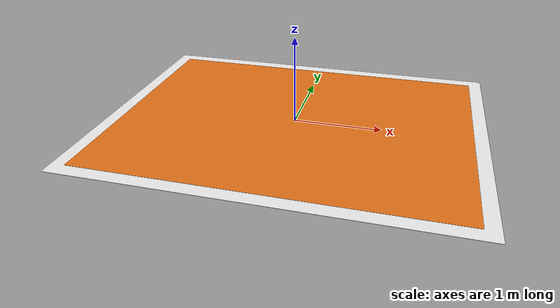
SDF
<?xml version="1.0" ?>
<!-- 출고 도크 바닥 표시. 모델 원점 = 패드 중심, x = 4 m, y = 3 m. 충돌체 없음(도색). -->
<sdf version="1.8">
  <model name="dock_pad_outbound">
    <static>true</static>
    <link name="link">
      <visual name="pad">
        <pose>0 0 0.003 0 0 0</pose>
        <geometry><box><size>4.0 3.0 0.006</size></box></geometry>
        <material>
          <ambient>0.90 0.45 0.10 1</ambient>
          <diffuse>0.90 0.45 0.10 1</diffuse>
        </material>
      </visual>
      <visual name="border">
        <pose>0 0 0.002 0 0 0</pose>
        <geometry><box><size>4.3 3.3 0.004</size></box></geometry>
        <material>
          <ambient>0.95 0.95 0.95 1</ambient>
          <diffuse>0.95 0.95 0.95 1</diffuse>
        </material>
      </visual>
    </link>
  </model>
</sdf>
